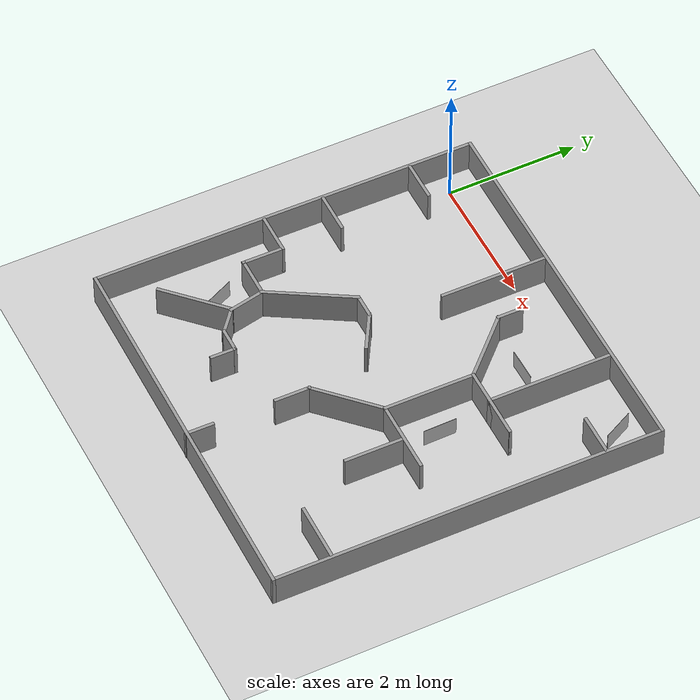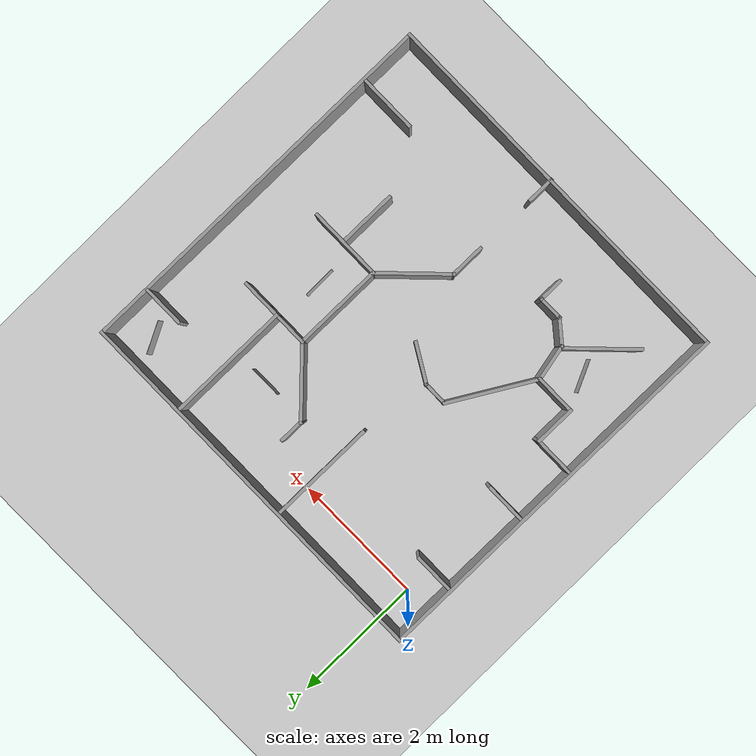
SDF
<sdf version="1.7">
 <world name="default">
  <light name="sun" type="directional">
   <pose>0 0 10 0 -0 0</pose>
   <diffuse>0.8 0.8 0.8 1</diffuse>
   <specular>0.2 0.2 0.2 1</specular>
   <attenuation>
    <range>1000</range>
    <constant>0.9</constant>
    <linear>0.01</linear>
    <quadratic>0.001</quadratic>
   </attenuation>
   <direction>-0.5 0.1 -0.9</direction>
   <spot><inner_angle>0</inner_angle><outer_angle>0</outer_angle><falloff>0</falloff></spot>
  </light>
  <model name="ground_plane">
   <static>1</static>
   <link name="link">
    <collision name="collision">
     <geometry><plane><normal>0 0 1</normal><size>100 100</size></plane></geometry>
     <surface>
      <contact><collide_bitmask>65535</collide_bitmask></contact>
      <friction><ode><mu>100</mu><mu2>50</mu2></ode></friction>
     </surface>
    </collision>
    <visual name="visual">
     <cast_shadows>0</cast_shadows>
     <geometry><plane><normal>0 0 1</normal><size>100 100</size></plane></geometry>
     <material>
      <script><uri>file://media/materials/scripts/gazebo.material</uri><name>Gazebo/Grey</name></script>
     </material>
    </visual>
   </link>
  </model>
  <gravity>0 0 -9.8</gravity>
  <magnetic_field>6e-06 2.3e-05 -4.2e-05</magnetic_field>
  <atmosphere type="adiabatic"/>
  <physics type="ode">
   <max_step_size>0.001</max_step_size>
   <real_time_factor>1</real_time_factor>
   <real_time_update_rate>1000</real_time_update_rate>
  </physics>
  <scene><ambient>0.4 0.4 0.4 1</ambient><background>0.7 0.7 0.7 1</background><shadows>1</shadows></scene>
  <spherical_coordinates>
   <surface_model>EARTH_WGS84</surface_model>
   <latitude_deg>0</latitude_deg>
   <longitude_deg>0</longitude_deg>
   <elevation>0</elevation>
   <heading_deg>0</heading_deg>
  </spherical_coordinates>
  <model name="t7">
   <pose>3.59665 -2.47671 0 0 0 -1.5802</pose>
   <link name="Wall_0">
    <collision name="Wall_0_Collision">
     <geometry><box><size>5.9 0.05 0.5</size></box></geometry>
     <pose>0 0 0.25 0 -0 0</pose>
    </collision>
    <visual name="Wall_0_Visual">
     <pose>0 0 0.25 0 -0 0</pose>
     <geometry><box><size>5.9 0.05 0.5</size></box></geometry>
     <material>
      <script><uri>file://media/materials/scripts/gazebo.material</uri><name>Gazebo/Grey</name></script>
      <ambient>1 1 1 1</ambient>
     </material>
     <meta><layer>0</layer></meta>
    </visual>
    <pose>-2.92895 -1.0375 0 0 -0 -1.5708</pose>
   </link>
   <link name="Wall_1">
    <collision name="Wall_1_Collision">
     <geometry><box><size>5.9 0.05 0.5</size></box></geometry>
     <pose>0 0 0.25 0 -0 0</pose>
    </collision>
    <visual name="Wall_1_Visual">
     <pose>0 0 0.25 0 -0 0</pose>
     <geometry><box><size>5.9 0.05 0.5</size></box></geometry>
     <material>
      <script><uri>file://media/materials/scripts/gazebo.material</uri><name>Gazebo/Grey</name></script>
      <ambient>1 1 1 1</ambient>
     </material>
     <meta><layer>0</layer></meta>
    </visual>
    <pose>-0.003954 -3.9625 0 0 -0 0</pose>
   </link>
   <link name="Wall_10">
    <collision name="Wall_10_Collision">
     <geometry><box><size>0.65 0.05 0.5</size></box></geometry>
     <pose>0 0 0.25 0 -0 0</pose>
    </collision>
    <visual name="Wall_10_Visual">
     <pose>0 0 0.25 0 -0 0</pose>
     <geometry><box><size>0.65 0.05 0.5</size></box></geometry>
     <material>
      <script><uri>file://media/materials/scripts/gazebo.material</uri><name>Gazebo/Grey</name></script>
      <ambient>1 1 1 1</ambient>
     </material>
     <meta><layer>0</layer></meta>
    </visual>
    <pose>-1.95895 -3.6425 0 0 -0 1.5708</pose>
   </link>
   <link name="Wall_12">
    <collision name="Wall_12_Collision">
     <geometry><box><size>1.9 0.05 0.5</size></box></geometry>
     <pose>0 0 0.25 0 -0 0</pose>
    </collision>
    <visual name="Wall_12_Visual">
     <pose>0 0 0.25 0 -0 0</pose>
     <geometry><box><size>1.9 0.05 0.5</size></box></geometry>
     <material>
      <script><uri>file://media/materials/scripts/gazebo.material</uri><name>Gazebo/Grey</name></script>
      <ambient>1 1 1 1</ambient>
     </material>
     <meta><layer>0</layer></meta>
    </visual>
    <pose>-1.97395 0.3975 0 0 -0 0</pose>
   </link>
   <link name="Wall_13">
    <collision name="Wall_13_Collision">
     <geometry><box><size>0.65 0.05 0.5</size></box></geometry>
     <pose>0 0 0.25 0 -0 0</pose>
    </collision>
    <visual name="Wall_13_Visual">
     <pose>0 0 0.25 0 -0 0</pose>
     <geometry><box><size>0.65 0.05 0.5</size></box></geometry>
     <material>
      <script><uri>file://media/materials/scripts/gazebo.material</uri><name>Gazebo/Grey</name></script>
      <ambient>1 1 1 1</ambient>
     </material>
     <meta><layer>0</layer></meta>
    </visual>
    <pose>-1.04895 0.6975 0 0 -0 1.5708</pose>
   </link>
   <link name="Wall_14">
    <collision name="Wall_14_Collision">
     <geometry><box><size>1.15 0.05 0.5</size></box></geometry>
     <pose>0 0 0.25 0 -0 0</pose>
    </collision>
    <visual name="Wall_14_Visual">
     <pose>0 0 0.25 0 -0 0</pose>
     <geometry><box><size>1.15 0.05 0.5</size></box></geometry>
     <material>
      <script><uri>file://media/materials/scripts/gazebo.material</uri><name>Gazebo/Grey</name></script>
      <ambient>1 1 1 1</ambient>
     </material>
     <meta><layer>0</layer></meta>
    </visual>
    <pose>-1.04895 0.4475 0 0 -0 -1.5708</pose>
   </link>
   <link name="Wall_15">
    <collision name="Wall_15_Collision">
     <geometry><box><size>1.4 0.05 0.5</size></box></geometry>
     <pose>0 0 0.25 0 -0 0</pose>
    </collision>
    <visual name="Wall_15_Visual">
     <pose>0 0 0.25 0 -0 0</pose>
     <geometry><box><size>1.4 0.05 0.5</size></box></geometry>
     <material>
      <script><uri>file://media/materials/scripts/gazebo.material</uri><name>Gazebo/Grey</name></script>
      <ambient>1 1 1 1</ambient>
     </material>
     <meta><layer>0</layer></meta>
    </visual>
    <pose>-0.373954 -0.1025 0 0 -0 0</pose>
   </link>
   <link name="Wall_16">
    <collision name="Wall_16_Collision">
     <geometry><box><size>1.15 0.05 0.5</size></box></geometry>
     <pose>0 0 0.25 0 -0 0</pose>
    </collision>
    <visual name="Wall_16_Visual">
     <pose>0 0 0.25 0 -0 0</pose>
     <geometry><box><size>1.15 0.05 0.5</size></box></geometry>
     <material>
      <script><uri>file://media/materials/scripts/gazebo.material</uri><name>Gazebo/Grey</name></script>
      <ambient>1 1 1 1</ambient>
     </material>
     <meta><layer>0</layer></meta>
    </visual>
    <pose>0.301046 0.4475 0 0 -0 1.5708</pose>
   </link>
   <link name="Wall_19">
    <collision name="Wall_19_Collision">
     <geometry><box><size>0.9 0.05 0.5</size></box></geometry>
     <pose>0 0 0.25 0 -0 0</pose>
    </collision>
    <visual name="Wall_19_Visual">
     <pose>0 0 0.25 0 -0 0</pose>
     <geometry><box><size>0.9 0.05 0.5</size></box></geometry>
     <material>
      <script><uri>file://media/materials/scripts/gazebo.material</uri><name>Gazebo/Grey</name></script>
      <ambient>1 1 1 1</ambient>
     </material>
     <meta><layer>0</layer></meta>
    </visual>
    <pose>0.756046 0.4875 0 0 -0 0</pose>
   </link>
   <link name="Wall_2">
    <collision name="Wall_2_Collision">
     <geometry><box><size>5.9 0.05 0.5</size></box></geometry>
     <pose>0 0 0.25 0 -0 0</pose>
    </collision>
    <visual name="Wall_2_Visual">
     <pose>0 0 0.25 0 -0 0</pose>
     <geometry><box><size>5.9 0.05 0.5</size></box></geometry>
     <material>
      <script><uri>file://media/materials/scripts/gazebo.material</uri><name>Gazebo/Grey</name></script>
      <ambient>1 1 1 1</ambient>
     </material>
     <meta><layer>0</layer></meta>
    </visual>
    <pose>2.92105 -1.0375 0 0 -0 1.5708</pose>
   </link>
   <link name="Wall_21">
    <collision name="Wall_21_Collision">
     <geometry><box><size>1.15 0.05 0.5</size></box></geometry>
     <pose>0 0 0.25 0 -0 0</pose>
    </collision>
    <visual name="Wall_21_Visual">
     <pose>0 0 0.25 0 -0 0</pose>
     <geometry><box><size>1.15 0.05 0.5</size></box></geometry>
     <material>
      <script><uri>file://media/materials/scripts/gazebo.material</uri><name>Gazebo/Grey</name></script>
      <ambient>1 1 1 1</ambient>
     </material>
     <meta><layer>0</layer></meta>
    </visual>
    <pose>-1.43795 -0.4915 0 0 -0 -2.35619</pose>
   </link>
   <link name="Wall_23">
    <collision name="Wall_23_Collision">
     <geometry><box><size>0.65 0.05 0.5</size></box></geometry>
     <pose>0 0 0.25 0 -0 0</pose>
    </collision>
    <visual name="Wall_23_Visual">
     <pose>0 0 0.25 0 -0 0</pose>
     <geometry><box><size>0.65 0.05 0.5</size></box></geometry>
     <material>
      <script><uri>file://media/materials/scripts/gazebo.material</uri><name>Gazebo/Grey</name></script>
      <ambient>1 1 1 1</ambient>
     </material>
     <meta><layer>0</layer></meta>
    </visual>
    <pose>-2.07895 1.5675 0 0 -0 -1.5708</pose>
   </link>
   <link name="Wall_25">
    <collision name="Wall_25_Collision">
     <geometry><box><size>1.15026 0.05 0.5</size></box></geometry>
     <pose>0 0 0.25 0 -0 0</pose>
    </collision>
    <visual name="Wall_25_Visual">
     <pose>0 0 0.25 0 -0 0</pose>
     <geometry><box><size>1.15026 0.05 0.5</size></box></geometry>
     <material>
      <script><uri>file://media/materials/scripts/gazebo.material</uri><name>Gazebo/Grey</name></script>
      <ambient>1 1 1 1</ambient>
     </material>
     <meta><layer>0</layer></meta>
    </visual>
    <pose>0.690046 -0.4915 0 0 -0 -0.785398</pose>
   </link>
   <link name="Wall_26">
    <pose>2.00405 -0.8805 0 0 -0 0</pose>
    <visual name="Wall_26_Visual_0">
     <pose>-0.671363 0 0.25 0 -0 0</pose>
     <geometry><box><size>0.557091 0.05 0.5</size></box></geometry>
     <material>
      <script><uri>file://media/materials/scripts/gazebo.material</uri><name>Gazebo/Grey</name></script>
      <ambient>1 1 1 1</ambient>
     </material>
     <meta><layer>0</layer></meta>
    </visual>
    <collision name="Wall_26_Collision_0">
     <geometry><box><size>0.557091 0.05 0.5</size></box></geometry>
     <pose>-0.671363 0 0.25 0 -0 0</pose>
    </collision>
    <visual name="Wall_26_Visual_1">
     <pose>0.728546 0 0.25 0 -0 0</pose>
     <geometry><box><size>0.442726 0.05 0.5</size></box></geometry>
     <material>
      <script><uri>file://media/materials/scripts/gazebo.material</uri><name>Gazebo/Grey</name></script>
      <ambient>1 1 1 1</ambient>
     </material>
     <meta><layer>0</layer></meta>
    </visual>
    <collision name="Wall_26_Collision_1">
     <geometry><box><size>0.442726 0.05 0.5</size></box></geometry>
     <pose>0.728546 0 0.25 0 -0 0</pose>
    </collision>
   </link>
   <link name="Wall_28">
    <collision name="Wall_28_Collision">
     <geometry><box><size>0.9 0.05 0.5</size></box></geometry>
     <pose>0 0 0.25 0 -0 0</pose>
    </collision>
    <visual name="Wall_28_Visual">
     <pose>0 0 0.25 0 -0 0</pose>
     <geometry><box><size>0.9 0.05 0.5</size></box></geometry>
     <material>
      <script><uri>file://media/materials/scripts/gazebo.material</uri><name>Gazebo/Grey</name></script>
      <ambient>1 1 1 1</ambient>
     </material>
     <meta><layer>0</layer></meta>
    </visual>
    <pose>2.05105 1.4225 0 0 -0 -1.5708</pose>
   </link>
   <link name="Wall_3">
    <collision name="Wall_3_Collision">
     <geometry><box><size>5.9 0.05 0.5</size></box></geometry>
     <pose>0 0 0.25 0 -0 0</pose>
    </collision>
    <visual name="Wall_3_Visual">
     <pose>0 0 0.25 0 -0 0</pose>
     <geometry><box><size>5.9 0.05 0.5</size></box></geometry>
     <material>
      <script><uri>file://media/materials/scripts/gazebo.material</uri><name>Gazebo/Grey</name></script>
      <ambient>1 1 1 1</ambient>
     </material>
     <meta><layer>0</layer></meta>
    </visual>
    <pose>-0.003954 1.8875 0 0 -0 3.14159</pose>
   </link>
   <link name="Wall_30">
    <collision name="Wall_30_Collision">
     <geometry><box><size>0.4 0.05 0.5</size></box></geometry>
     <pose>0 0 0.25 0 -0 0</pose>
    </collision>
    <visual name="Wall_30_Visual">
     <pose>0 0 0.25 0 -0 0</pose>
     <geometry><box><size>0.4 0.05 0.5</size></box></geometry>
     <material>
      <script><uri>file://media/materials/scripts/gazebo.material</uri><name>Gazebo/Grey</name></script>
      <ambient>1 1 1 1</ambient>
     </material>
     <meta><layer>0</layer></meta>
    </visual>
    <pose>-2.00195 -0.8805 0 0 -0 3.14159</pose>
   </link>
   <link name="Wall_32">
    <collision name="Wall_32_Collision">
     <geometry><box><size>1.65 0.05 0.5</size></box></geometry>
     <pose>0 0 0.25 0 -0 0</pose>
    </collision>
    <visual name="Wall_32_Visual">
     <pose>0 0 0.25 0 -0 0</pose>
     <geometry><box><size>1.65 0.05 0.5</size></box></geometry>
     <material>
      <script><uri>file://media/materials/scripts/gazebo.material</uri><name>Gazebo/Grey</name></script>
      <ambient>1 1 1 1</ambient>
     </material>
     <meta><layer>0</layer></meta>
    </visual>
    <pose>-2.10895 -1.5725 0 0 -0 0</pose>
   </link>
   <link name="Wall_35">
    <collision name="Wall_35_Collision">
     <geometry><box><size>0.65 0.05 0.5</size></box></geometry>
     <pose>0 0 0.25 0 -0 0</pose>
    </collision>
    <visual name="Wall_35_Visual">
     <pose>0 0 0.25 0 -0 0</pose>
     <geometry><box><size>0.65 0.05 0.5</size></box></geometry>
     <material>
      <script><uri>file://media/materials/scripts/gazebo.material</uri><name>Gazebo/Grey</name></script>
      <ambient>1 1 1 1</ambient>
     </material>
     <meta><layer>0</layer></meta>
    </visual>
    <pose>0.631046 -3.3325 0 0 -0 0</pose>
   </link>
   <link name="Wall_36">
    <collision name="Wall_36_Collision">
     <geometry><box><size>0.65 0.05 0.5</size></box></geometry>
     <pose>0 0 0.25 0 -0 0</pose>
    </collision>
    <visual name="Wall_36_Visual">
     <pose>0 0 0.25 0 -0 0</pose>
     <geometry><box><size>0.65 0.05 0.5</size></box></geometry>
     <material>
      <script><uri>file://media/materials/scripts/gazebo.material</uri><name>Gazebo/Grey</name></script>
      <ambient>1 1 1 1</ambient>
     </material>
     <meta><layer>0</layer></meta>
    </visual>
    <pose>0.931046 -3.0325 0 0 -0 1.5708</pose>
   </link>
   <link name="Wall_37">
    <collision name="Wall_37_Collision">
     <geometry><box><size>0.586257 0.05 0.5</size></box></geometry>
     <pose>0 0 0.25 0 -0 0</pose>
    </collision>
    <visual name="Wall_37_Visual">
     <pose>0 0 0.25 0 -0 0</pose>
     <geometry><box><size>0.586257 0.05 0.5</size></box></geometry>
     <material>
      <script><uri>file://media/materials/scripts/gazebo.material</uri><name>Gazebo/Grey</name></script>
      <ambient>1 1 1 1</ambient>
     </material>
     <meta><layer>0</layer></meta>
    </visual>
    <pose>1.19305 -2.6755 0 0 -0 0.214219</pose>
   </link>
   <link name="Wall_38">
    <collision name="Wall_38_Collision">
     <geometry><box><size>0.448246 0.05 0.5</size></box></geometry>
     <pose>0 0 0.25 0 -0 0</pose>
    </collision>
    <visual name="Wall_38_Visual">
     <pose>0 0 0.25 0 -0 0</pose>
     <geometry><box><size>0.448246 0.05 0.5</size></box></geometry>
     <material>
      <script><uri>file://media/materials/scripts/gazebo.material</uri><name>Gazebo/Grey</name></script>
      <ambient>1 1 1 1</ambient>
     </material>
     <meta><layer>0</layer></meta>
    </visual>
    <pose>1.58005 -2.4635 0 0 -0 0.892134</pose>
   </link>
   <link name="Wall_39">
    <collision name="Wall_39_Collision">
     <geometry><box><size>0.400264 0.05 0.5</size></box></geometry>
     <pose>0 0 0.25 0 -0 0</pose>
    </collision>
    <visual name="Wall_39_Visual">
     <pose>0 0 0.25 0 -0 0</pose>
     <geometry><box><size>0.400264 0.05 0.5</size></box></geometry>
     <material>
      <script><uri>file://media/materials/scripts/gazebo.material</uri><name>Gazebo/Grey</name></script>
      <ambient>1 1 1 1</ambient>
     </material>
     <meta><layer>0</layer></meta>
    </visual>
    <pose>1.70505 -2.1335 0 0 -0 1.5708</pose>
   </link>
   <link name="Wall_40">
    <collision name="Wall_40_Collision">
     <geometry><box><size>0.400264 0.05 0.5</size></box></geometry>
     <pose>0 0 0.25 0 -0 0</pose>
    </collision>
    <visual name="Wall_40_Visual">
     <pose>0 0 0.25 0 -0 0</pose>
     <geometry><box><size>0.400264 0.05 0.5</size></box></geometry>
     <material>
      <script><uri>file://media/materials/scripts/gazebo.material</uri><name>Gazebo/Grey</name></script>
      <ambient>1 1 1 1</ambient>
     </material>
     <meta><layer>0</layer></meta>
    </visual>
    <pose>1.88005 -1.9585 0 0 -0 0</pose>
   </link>
   <link name="Wall_42">
    <collision name="Wall_42_Collision">
     <geometry><box><size>1.15026 0.05 0.5</size></box></geometry>
     <pose>0 0 0.25 0 -0 0</pose>
    </collision>
    <visual name="Wall_42_Visual">
     <pose>0 0 0.25 0 -0 0</pose>
     <geometry><box><size>1.15026 0.05 0.5</size></box></geometry>
     <material>
      <script><uri>file://media/materials/scripts/gazebo.material</uri><name>Gazebo/Grey</name></script>
      <ambient>1 1 1 1</ambient>
     </material>
     <meta><layer>0</layer></meta>
    </visual>
    <pose>1.82405 -3.0175 0 0 -0 -0.785398</pose>
   </link>
   <link name="Wall_44">
    <collision name="Wall_44_Collision">
     <geometry><box><size>1.39988 0.05 0.5</size></box></geometry>
     <pose>0 0 0.25 0 -0 0</pose>
    </collision>
    <visual name="Wall_44_Visual">
     <pose>0 0 0.25 0 -0 0</pose>
     <geometry><box><size>1.39988 0.05 0.5</size></box></geometry>
     <material>
      <script><uri>file://media/materials/scripts/gazebo.material</uri><name>Gazebo/Grey</name></script>
      <ambient>1 1 1 1</ambient>
     </material>
     <meta><layer>0</layer></meta>
    </visual>
    <pose>0.346546 -2.395 0 0 -0 2.61794</pose>
   </link>
   <link name="Wall_45">
    <collision name="Wall_45_Collision">
     <geometry><box><size>0.4 0.05 0.5</size></box></geometry>
     <pose>0 0 0.25 0 -0 0</pose>
    </collision>
    <visual name="Wall_45_Visual">
     <pose>0 0 0.25 0 -0 0</pose>
     <geometry><box><size>0.4 0.05 0.5</size></box></geometry>
     <material>
      <script><uri>file://media/materials/scripts/gazebo.material</uri><name>Gazebo/Grey</name></script>
      <ambient>1 1 1 1</ambient>
     </material>
     <meta><layer>0</layer></meta>
    </visual>
    <pose>-0.237954 -1.8825 0 0 -0 1.5708</pose>
   </link>
   <link name="Wall_46">
    <collision name="Wall_46_Collision">
     <geometry><box><size>0.649933 0.05 0.5</size></box></geometry>
     <pose>0 0 0.25 0 -0 0</pose>
    </collision>
    <visual name="Wall_46_Visual">
     <pose>0 0 0.25 0 -0 0</pose>
     <geometry><box><size>0.649933 0.05 0.5</size></box></geometry>
     <material>
      <script><uri>file://media/materials/scripts/gazebo.material</uri><name>Gazebo/Grey</name></script>
      <ambient>1 1 1 1</ambient>
     </material>
     <meta><layer>0</layer></meta>
    </visual>
    <pose>-0.087954 -1.4475 0 0 -0 1.04752</pose>
   </link>
   <link name="Wall_6">
    <collision name="Wall_6_Collision">
     <geometry><box><size>0.65 0.05 0.5</size></box></geometry>
     <pose>0 0 0.25 0 -0 0</pose>
    </collision>
    <visual name="Wall_6_Visual">
     <pose>0 0 0.25 0 -0 0</pose>
     <geometry><box><size>0.65 0.05 0.5</size></box></geometry>
     <material>
      <script><uri>file://media/materials/scripts/gazebo.material</uri><name>Gazebo/Grey</name></script>
      <ambient>1 1 1 1</ambient>
     </material>
     <meta><layer>0</layer></meta>
    </visual>
    <pose>-0.588954 -3.6325 0 0 -0 -1.5708</pose>
   </link>
   <link name="Wall_8">
    <collision name="Wall_8_Collision">
     <geometry><box><size>0.65 0.05 0.5</size></box></geometry>
     <pose>0 0 0.25 0 -0 0</pose>
    </collision>
    <visual name="Wall_8_Visual">
     <pose>0 0 0.25 0 -0 0</pose>
     <geometry><box><size>0.65 0.05 0.5</size></box></geometry>
     <material>
      <script><uri>file://media/materials/scripts/gazebo.material</uri><name>Gazebo/Grey</name></script>
      <ambient>1 1 1 1</ambient>
     </material>
     <meta><layer>0</layer></meta>
    </visual>
    <pose>0.331046 -3.6325 0 0 -0 -1.5708</pose>
   </link>
   <static>1</static>
  </model>
  <model name="stopBoard_0">
   <static>1</static>
   <link name="board_link">
    <visual name="board_visual">
     <geometry><box><size>0.5 0.3 0.005</size></box></geometry>
     <pose>0 0 0.15 1.5708 -0 0</pose>
    </visual>
    <collision name="board_collision">
     <geometry><box><size>0.5 0.3 0.005</size></box></geometry>
     <pose>0 0 0.15 1.5708 -0 0</pose>
    </collision>
   </link>
   <pose>3.94983 -2.16453 0 0 0 -1.55605</pose>
  </model>
  <model name="stopBoard_1">
   <static>1</static>
   <link name="board_link">
    <visual name="board_visual">
     <geometry><box><size>0.5 0.3 0.005</size></box></geometry>
     <pose>0 0 0.15 1.5708 -0 0</pose>
    </visual>
    <collision name="board_collision">
     <geometry><box><size>0.5 0.3 0.005</size></box></geometry>
     <pose>0 0 0.15 1.5708 -0 0</pose>
    </collision>
   </link>
   <pose>0.437969 -3.86681 0 0 -0 2.01302</pose>
  </model>
  <model name="stopBoard_2">
   <static>1</static>
   <link name="board_link">
    <visual name="board_visual">
     <geometry><box><size>0.5 0.3 0.005</size></box></geometry>
     <pose>0 0 0.15 1.5708 -0 0</pose>
    </visual>
    <collision name="board_collision">
     <geometry><box><size>0.5 0.3 0.005</size></box></geometry>
     <pose>0 0 0.15 1.5708 -0 0</pose>
    </collision>
   </link>
   <pose>3.49137 -0.658589 0 0 -0 0</pose>
  </model>
  <model name="stopBoard">
   <static>1</static>
   <link name="board_link">
    <visual name="board_visual">
     <geometry><box><size>0.5 0.3 0.005</size></box></geometry>
     <pose>0 0 0.15 1.5708 -0 0</pose>
    </visual>
    <collision name="board_collision">
     <geometry><box><size>0.5 0.3 0.005</size></box></geometry>
     <pose>0 0 0.15 1.5708 -0 0</pose>
    </collision>
   </link>
   <pose>5.02531 0.021748 0 0 0 -1.10178</pose>
  </model>
 </world>
</sdf>
